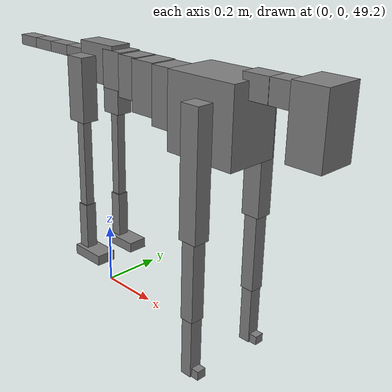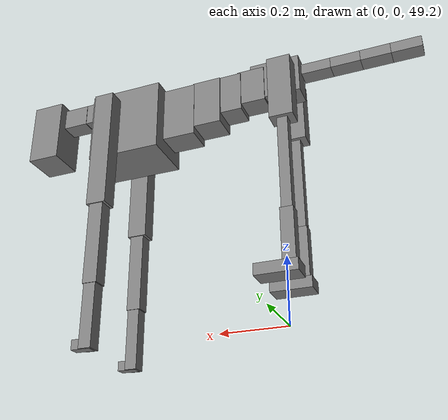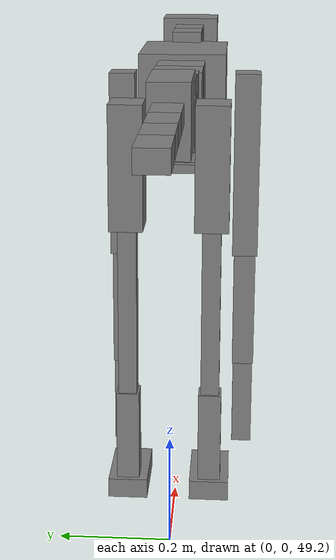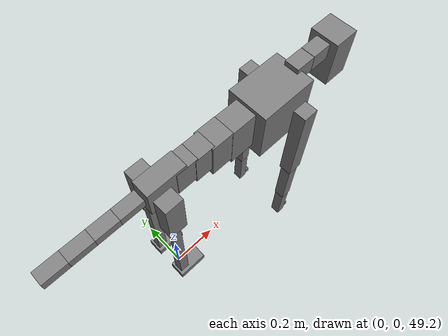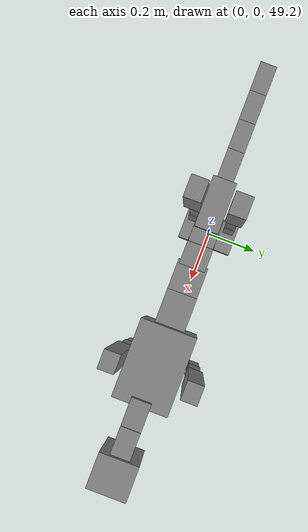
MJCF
<mujoco model="dog">

    <default>
        <joint armature="0.02" stiffness="1" damping="0.2" limited="true"/>
        <geom condim="3" friction="1 0.05 0.05" margin="0.01"/>
        <motor ctrllimited="true" ctrlrange="-1.0 1.0" forcelimited="true" gear="50"/>
    </default>

    <compiler inertiafromgeom="true" angle="radian"/>

    <option timestep="0.016" iterations="50" tolerance="1e-10" solver="Newton" jacobian="dense" cone="pyramidal"/>

    <size nconmax="20000" njmax="60000" nstack="5000000"/>
    <visual>
        <map force="0.1" zfar="30"/>
        <rgba haze="0.15 0.25 0.35 1"/>
        <quality shadowsize="2048"/>
        <global offwidth="800" offheight="800"/>
    </visual>

    <asset>
        <texture type="skybox" builtin="gradient" rgb1="0.3 0.5 0.7" rgb2="0 0 0" width="512" height="512"/>
        <texture name="texplane" type="2d" builtin="checker" rgb1=".2 .3 .4" rgb2=".1 0.15 0.2" width="512" height="512"
                 mark="cross" markrgb=".8 .8 .8"/>
        <texture name="texgeom" type="cube" builtin="flat" mark="cross" width="127" height="1278" rgb1="0.8 0.6 0.4"
                 rgb2="0.8 0.6 0.4" markrgb="1 1 1" random="0.01"/>

        <material name="matplane" reflectance="0.3" texture="texplane" texrepeat="1 1" texuniform="true"/>
        <material name="matgeom" texture="texgeom" texuniform="true" rgba="0.8 0.6 .4 1"/>
    </asset>

    <worldbody>
        <geom name="floor" pos="0 0 0" size="0 0 .25" type="plane" material="matplane" condim="3"/>

        <light directional="false" diffuse=".2 .2 .2" specular="0 0 0" pos="0 0 5" dir="0 0 -1" castshadow="false"/>
        <light mode="targetbodycom" target="torso" directional="false" diffuse=".8 .8 .8" specular="0.3 0.3 0.3"
               pos="0 0 4.0" dir="0 0 -1"/>

        <body name="root" pos="0 0 50">
            <freejoint name="root_1"/>
            <geom type="box" pos="0 0 -0.02" size="0.0774  0.0358  0.063" density="2030"/>

            <body name="spine1" pos="0.054 0 0">
                <joint name="spine1_y" axis="0 1 0" range="0 0.7" limited="true"/>
                <geom type="box" pos="0.02375 0 -0.03" size="0.04375  0.0375  0.05985" density="2030"/>

                <body name="spine2" pos="0.0612 0 0">
                    <joint name="spine2_y" axis="0 1 0" range="-0.15 0.15" limited="true"/>
                    <geom type="box" pos="0.03555  0  -0.04" size="0.04055  0.039  0.06615" density="2030"/>

                    <body name="spine3" pos="0.0730 0 0">
                        <joint name="spine3_y" axis="0 1 0" range="-0.15 0.15" limited="true"/>
                        <geom type="box" pos="0.03555  0  -0.057" size="0.04555  0.0445  0.081" density="2030"/>

                        <body name="spine4" pos="0.0780 0 0">
                            <joint name="spine4_y" axis="0 1 0" range="-0.15 0.15" limited="true"/>
                            <geom type="box" pos="0.05265  0  -0.07" size="0.05265  0.045  0.09135" density="2030"/>

                            <body name="torso" pos="0.1082 0 0">
                                <joint name="torso_y" axis="0 1 0" range="-0.15 0.15" limited="true"/>
                                <geom type="box" pos="0.11925  0  -0.085" size="0.11925  0.085  0.11745"
                                      density="2030"/>

                                <body name="neck1" pos="0.2160  0   0.0180">
                                    <joint name="neck1_y" axis="0 1 0" range="-1.2  -1" limited="true"/>
                                    <geom type="box" pos="0.0423  0  0" size="0.0423  0.03  0.036" density="2325"/>

                                    <body name="neck2" pos="0.0853  0  0">
                                        <joint name="neck2_y" axis="0 1 0" range="0.1  0" limited="true"/>
                                        <geom type="box" pos="0.0423  0  0" size="0.0423  0.03  0.036" density="2325"/>

                                        <body name="head" pos="0.0853  0  0">
                                            <joint name="head_y" axis="0 1 0" range="-0.3  -0.2" limited="true"/>
                                            <geom type="box" pos="0.0531  0  -0.055" size="0.0531  0.06  0.1044"
                                                  density="4030"/>

                                        </body>
                                    </body>
                                </body>

                                <body name="front_shoulder" pos="0.156  0   -0.0480">
                                    <joint name="front_shoulder_y" axis="0 1 0" range="-1 1.5" limited="true"/>
                                    <geom type="box" pos="0 0.13 -0.1665" size="0.0310  0.0265  0.1932" density="1158"/>
                                    <geom type="box" pos="0 -0.13 -0.1665" size="0.0310  0.0265  0.1932"
                                          density="1158"/>

                                    <body name="front_elbow" pos="0  0  -0.3330">
                                        <joint name="front_elbow_y" axis="0 1 0" range="-2 0" limited="true"/>
                                        <geom type="box" pos="0 0.13 -0.1374" size="0.0223  0.0227  0.1374"
                                              density="1081"/>
                                        <geom type="box" pos="0 -0.13 -0.1374" size="0.0223  0.0227  0.1374"
                                              density="1081"/>

                                        <body name="front_wrist" pos="0  0  -0.2747">
                                            <joint name="front_wrist_y" axis="0 1 0" range="-0.2 0" limited="true"/>
                                            <geom type="box" pos="0 0.13 -0.0860" size="0.0188  0.0209  0.0992"
                                                  density="1664"/>
                                            <geom type="box" pos="0 -0.13 -0.0860" size="0.0188  0.0209  0.0992"
                                                  density="1664"/>

                                            <body name="front_finger_end" pos="0  0  -0.1721">
                                                <joint name="front_finger_y" axis="0 1 0" range="-0.4 1"
                                                       limited="true"/>
                                                <geom type="box" pos="0.0157  0.13  0.0008"
                                                      size="0.0287  0.0157  0.0142" density="1515"/>
                                                <geom type="box" pos="0.0157  -0.13  0.0008"
                                                      size="0.0287  0.0157  0.0142" density="1515"/>

                                            </body>

                                        </body>
                                    </body>
                                </body>

                            </body>
                        </body>
                    </body>
                </body>
            </body>

            <body name="back_hip" pos="-0.03 0 -0.018">
                <joint name="back_hip_y" axis="0 1 0" range="-1.5 0.3" limited="true"/>
                <geom type="box" pos="0 0.07 -0.0814" size="0.0358  0.0281  0.1042" density="1154"/>
                <geom type="box" pos="0 -0.07 -0.0814" size="0.0358  0.0281  0.1042" density="1154"/>

                <body name="back_knee" pos="0  0  -0.1628">
                    <joint name="back_knee_y" axis="0 1 0" range="0 2.8" limited="true"/>
                    <geom type="box" pos="0 0.07 -0.1624" size="0.0158  0.0156  0.1779" density="1227"/>
                    <geom type="box" pos="0 -0.07 -0.1624" size="0.0158  0.0156  0.1779" density="1227"/>

                    <body name="back_ankle" pos="0  0  -0.3248">
                        <joint name="back_ankle_y" axis="0 1 0" range="-2.2 0" limited="true"/>
                        <geom type="box" pos="0 0.07 -0.0801" size="0.0193  0.0193  0.0914" density="1284"/>
                        <geom type="box" pos="0 -0.07 -0.0801" size="0.0193  0.0193  0.0914" density="1284"/>

                        <body name="back_toe_end" pos="0  0  -0.1602">
                            <joint name="back_toe_y" axis="0 1 0" range="-0.4 1" limited="true"/>
                            <geom type="box" pos="0.0335  0.07  -0.0019" size="0.0615  0.0335  0.0169" density="1515"/>
                            <geom type="box" pos="0.0335  -0.07  -0.0019" size="0.0615  0.0335  0.0169" density="1515"/>

                        </body>
                    </body>
                </body>
            </body>

            <body name="tail1" pos="-0.074 0 -0.006">
                <joint name="tail1_y" axis="0 1 0" range="-0.2 0.2" limited="true"/>
                <geom type="box" pos="-0.0536  0  0" size="0.045  0.025  0.0175" density="1587"/>

                <body name="tail2" pos="-0.09 0 0">
                    <joint name="tail2_y" axis="0 1 0" range="-0.2 0.2" limited="true"/>
                    <geom type="box" pos="-0.0536  0  0" size="0.045  0.025  0.0175" density="1587"/>

                    <body name="tail3" pos="-0.09 0 0">
                        <joint name="tail3_y" axis="0 1 0" range="-0.2 0.2" limited="true"/>
                        <geom type="box" pos="-0.0536  0  0" size="0.045  0.025  0.0175" density="1587"/>

                        <body name="tail4" pos="-0.09 0 0">
                            <joint name="tail4_y" axis="0 1 0" range="-0.2 0.2" limited="true"/>
                            <geom type="box" pos="-0.0536  0  0" size="0.045  0.025  0.0175" density="1587"/>

                        </body>
                    </body>
                </body>
            </body>
        </body>
    </worldbody>

    <actuator>
        <motor joint="spine1_y" forcerange="-150 150     "/>
        <motor joint="spine2_y" forcerange="-150 150     "/>
        <motor joint="spine3_y" forcerange="-150 150     "/>
        <motor joint="spine4_y" forcerange="-150 150     "/>
        <motor joint="torso_y" forcerange="-150 150     "/>
        <motor joint="neck1_y" forcerange="-100 100       "/>
        <motor joint="neck2_y" forcerange="-100 100       "/>
        <motor joint="head_y" forcerange="-150 150       "/>
        <motor joint="front_shoulder_y" forcerange="-157.98 118.51"/>
        <motor joint="front_elbow_y" forcerange="-132.23 133.21"/>
        <motor joint="front_wrist_y" forcerange="-67.04 100.23"/>
        <motor joint="front_finger_y" forcerange="-23.04 20.50"/>
        <motor joint="back_hip_y" forcerange="-365.19 209.20"/>
        <motor joint="back_knee_y" forcerange="-207.65 218.88"/>
        <motor joint="back_angle_y" forcerange="-74.57 134.93"/>
        <motor joint="back_toe_y" forcerange="-130.07 58.29"/>
        <motor joint="tail1_y" forcerange="-50 50     "/>
        <motor joint="tail2_y" forcerange="-50 50     "/>
        <motor joint="tail3_y" forcerange="-50 50     "/>
        <motor joint="tail4_y" forcerange="-50 50     "/>
    </actuator>
</mujoco>
